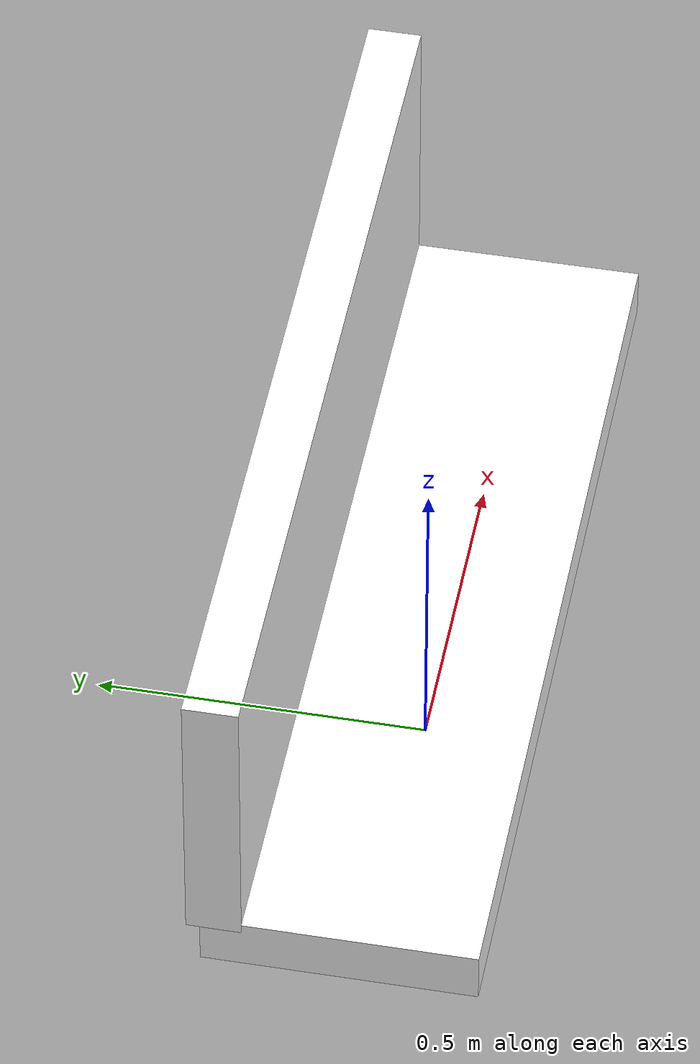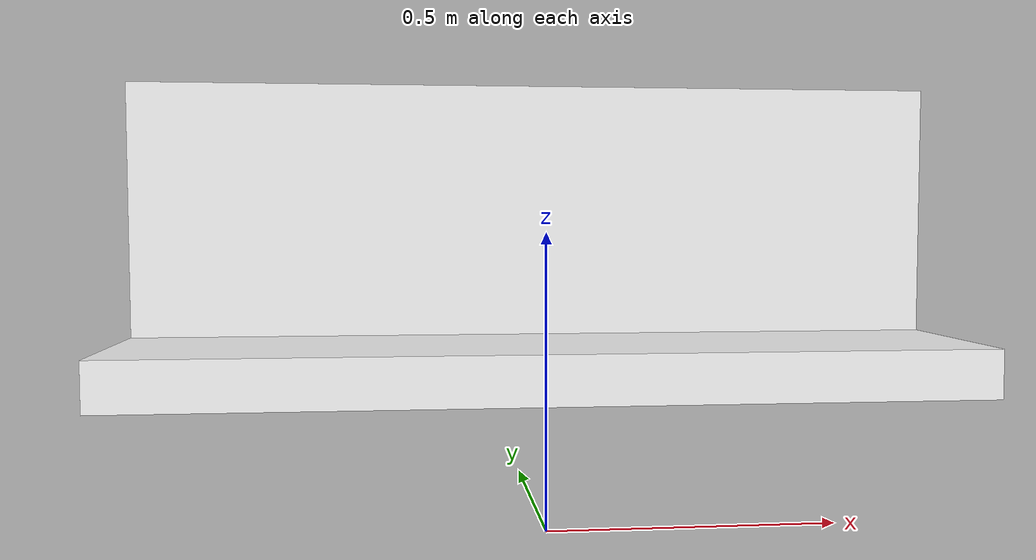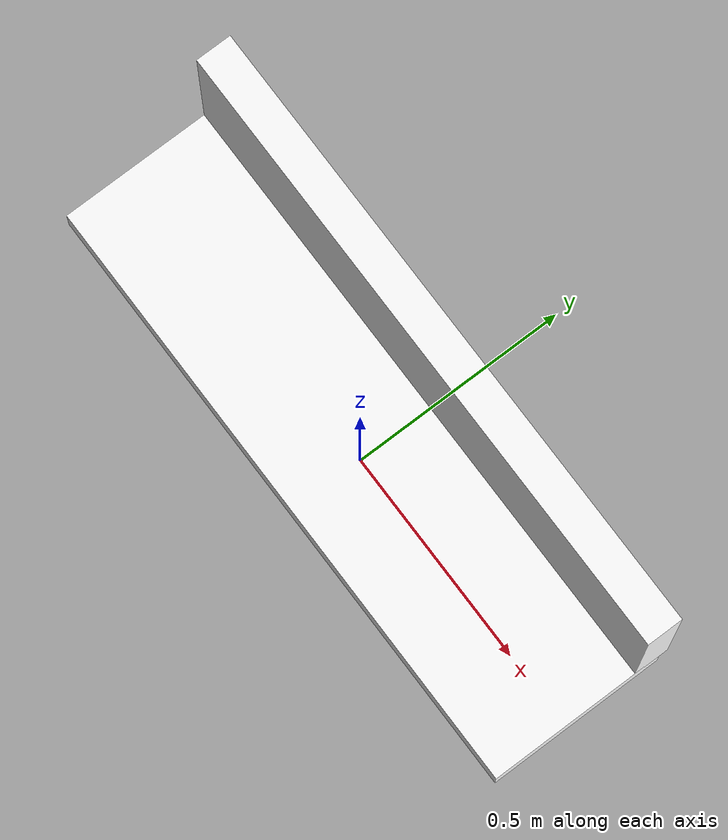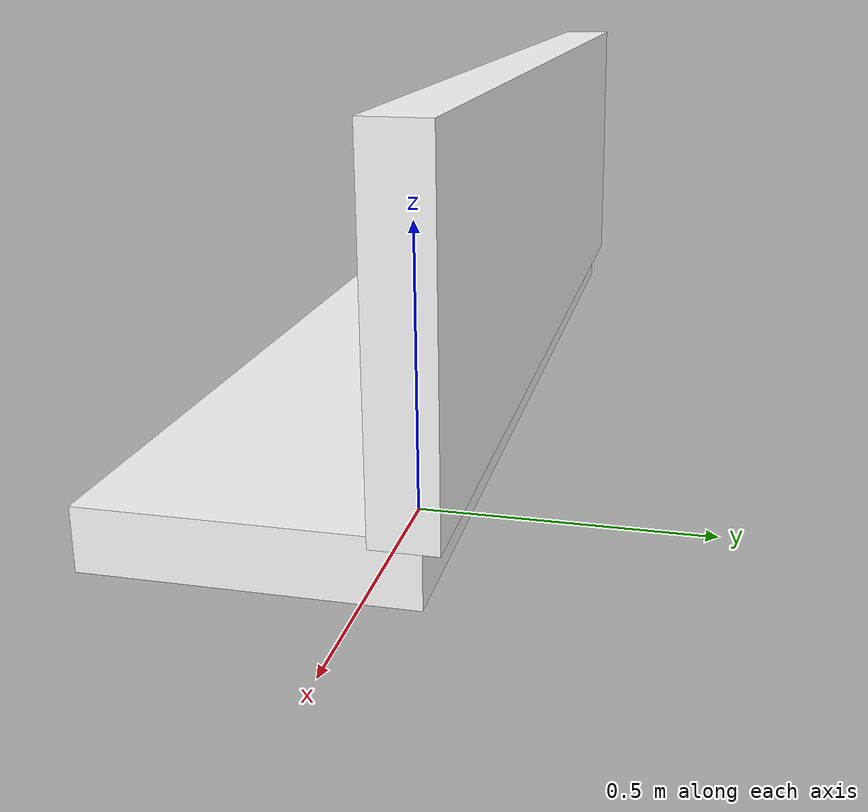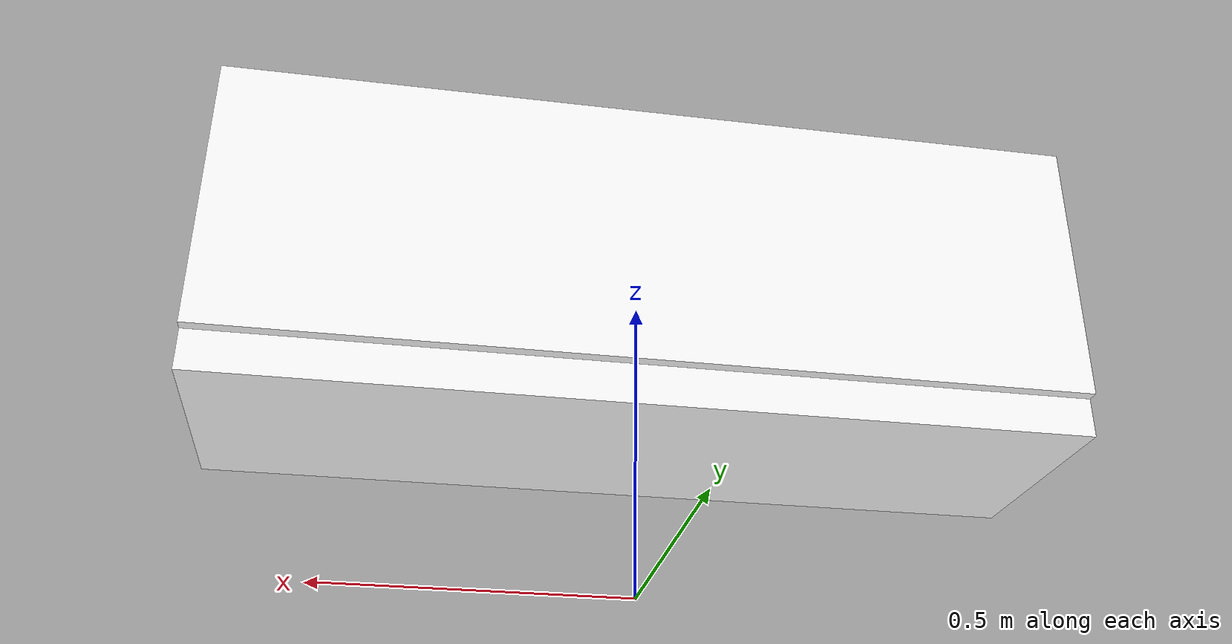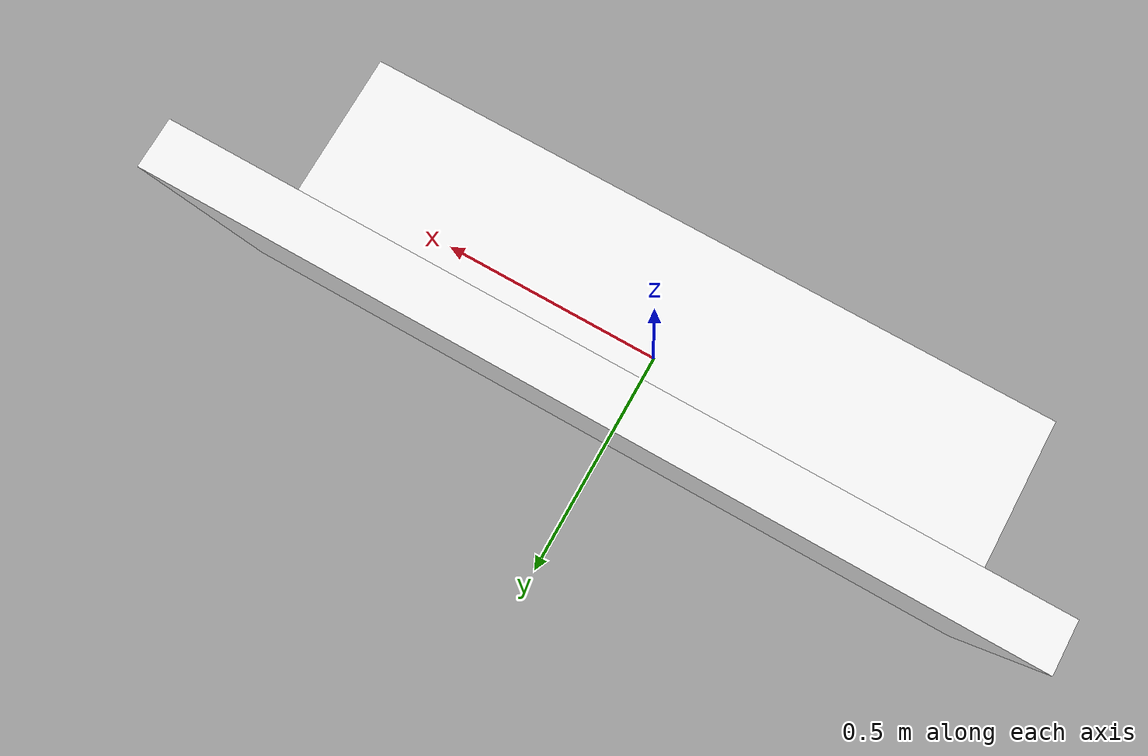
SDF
<?xml version="1.0"?>
<sdf version="1.8">
  <model name="simple_bench">
    <static>true</static>
    <link name="link">
      <pose>0 0 0.28 0 0 0</pose>
      <collision name="col">
        <geometry><box><size>1.4 0.4 0.08</size></box></geometry>
      </collision>
      <visual name="seat">
        <cast_shadows>false</cast_shadows>
        <geometry><box><size>1.4 0.4 0.08</size></box></geometry>
        <material>
          <ambient>0.45 0.3 0.15 1</ambient>
          <diffuse>1 1 1 1</diffuse>
          <pbr><metal><albedo_map>model://textures/wood.png</albedo_map></metal></pbr>
        </material>
      </visual>
      <visual name="back">
        <cast_shadows>false</cast_shadows>
        <pose>0 0.18 0.25 0 0 0</pose>
        <geometry><box><size>1.4 0.08 0.45</size></box></geometry>
        <material>
          <ambient>0.45 0.3 0.15 1</ambient>
          <diffuse>1 1 1 1</diffuse>
          <pbr><metal><albedo_map>model://textures/wood.png</albedo_map></metal></pbr>
        </material>
      </visual>
    </link>
  </model>
</sdf>
